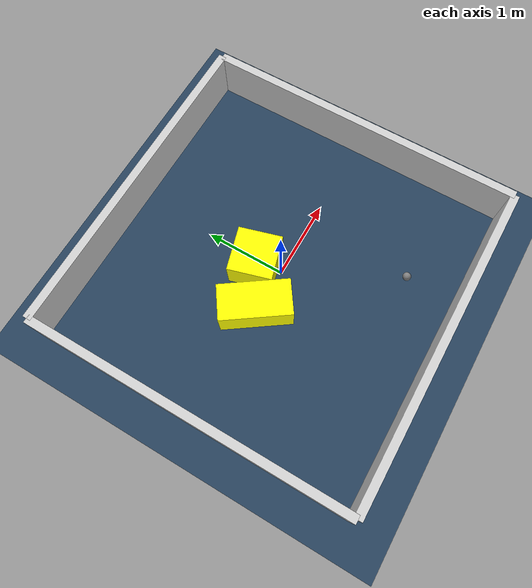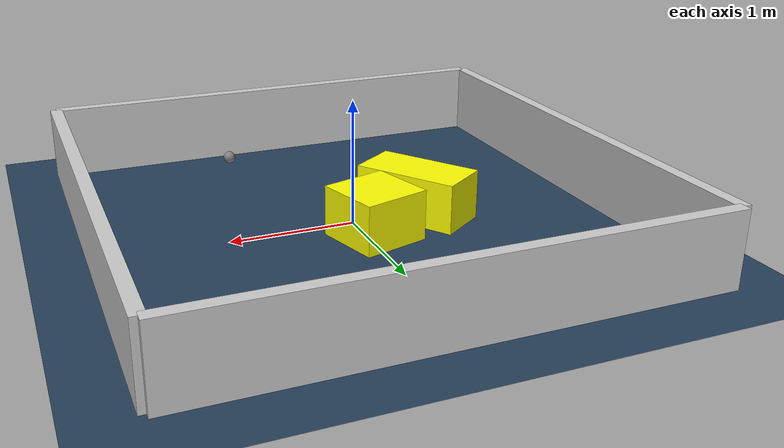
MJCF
<?xml version="1.0" ?>
<mujoco model="generated_environment">
  <option timestep="0.01" integrator="RK4" cone="elliptic"/>
  <default>
    <geom density="1"/>
  </default>
  <asset>
    <texture builtin="gradient" height="3072" rgb1="0.3 0.5 0.7" rgb2="0 0 0" type="skybox" width="512"/>
    <texture builtin="checker" height="300" mark="edge" markrgb="0.8 0.8 0.8" name="groundplane" rgb1="0.2 0.3 0.4" rgb2="0.1 0.2 0.3" type="2d" width="300"/>
    <material name="groundplane" reflectance="0.2" texrepeat="5 5" texture="groundplane" texuniform="true"/>
    <material name="robot" rgba="0.0 1.0 0.0 1"/>
  </asset>
  <worldbody>
    <light dir="0 0 -1" directional="true" pos="0 0 1.5"/>
    <geom condim="4" friction="1.0 0.005 0.001" material="groundplane" name="floor" size="0 0 0.05" type="plane"/>
    <body name="walls">
      <geom name="wall_1" condim="4" pos="-2.0 0.0 0.3" rgba="0.800000011920929 0.800000011920929 0.800000011920929 1.0" size="0.05 2.0 0.3" type="box"/>
      <geom name="wall_2" condim="4" pos="2.0 0.0 0.3" rgba="0.800000011920929 0.800000011920929 0.800000011920929 1.0" size="0.05 2.0 0.3" type="box"/>
      <geom name="wall_3" condim="4" pos="0.0 -2.0 0.3" rgba="0.800000011920929 0.800000011920929 0.800000011920929 1.0" size="2.0 0.05 0.3" type="box"/>
      <geom name="wall_4" condim="4" pos="0.0 2.0 0.3" rgba="0.800000011920929 0.800000011920929 0.800000011920929 1.0" size="2.0 0.05 0.3" type="box"/>
    </body>
    <body name="robot">
      <joint name="joint_x" type="slide" pos="0 0 0" axis="1 0 0"/>
      <joint name="joint_y" type="slide" pos="0 0 0" axis="0 1 0"/>
      <geom name="robot" type="sphere" pos="0.6330418804000124 -1.3416851687481757 0.2" size="0.05" mass="5." friction="1.0 0.005 0.0001" condim="4"/>
      <site name="sensor_ball"/>
    </body>
    <body name="obstacle_1_movable">
      <geom name="obstacle_1_movable" condim="4" pos="-0.5450750827258182 0.024029952739080374 0.2" euler="0 0 304.60234219980094" friction="1.0 0.005 0.001" rgba="1 1 0 1" size="0.42615676713451467 0.2151643001390157 0.2" type="box" mass="0.1"/>
      <joint type="free"/>
    </body>
    <body name="obstacle_2_movable">
      <geom name="obstacle_2_movable" condim="4" pos="-0.05975189838669692 0.3078221548762803 0.2" euler="0 0 15.995684817431993" friction="1.0 0.005 0.001" rgba="1 1 0 1" size="0.273292218481244 0.2685839424196519 0.2" type="box" mass="0.1"/>
      <joint type="free"/>
    </body>
  </worldbody>
  <actuator>
    <motor name="actuator_x" joint="joint_x" gear="1" ctrlrange="-1 1"/>
    <motor name="actuator_y" joint="joint_y" gear="1" ctrlrange="-1 1"/>
  </actuator>
</mujoco>
